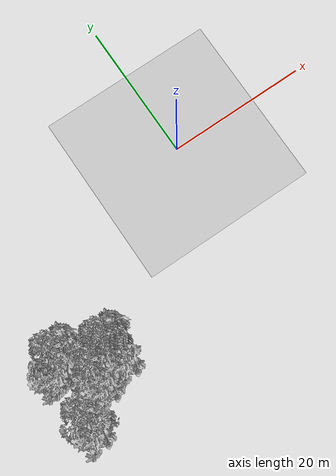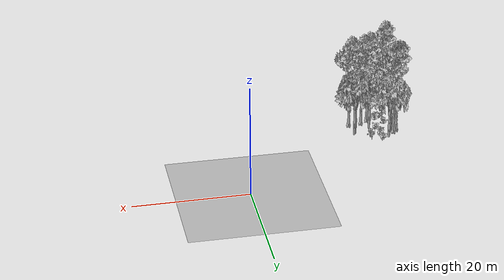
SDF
<sdf version="1.7">
 <world name="default">
  <model name="ground_plane">
   <static>1</static>
   <link name="link">
    <collision name="collision">
     <pose>-50 0 0 0 -0 0</pose>
     <geometry><plane><normal>0 0 1</normal><size>80 80</size></plane></geometry>
     <surface><contact><ode><min_depth>0.01</min_depth><max_vel>0</max_vel></ode></contact></surface>
    </collision>
    <visual name="grass">
     <cast_shadows>0</cast_shadows>
     <geometry>
      <mesh>
       <scale>0.46714285714285714 0.46714285714285714 0.1</scale>
       <uri>file://grass_plane/meshes/grass_plane.dae</uri>
      </mesh>
     </geometry>
    </visual>
   </link>
  </model>
  <model name="Tree 9">
   <static>1</static>
   <pose>-28.70857927524154 -17.509198013527776 0 1.57079 -0 0</pose>
   <link name="link">
    <collision name="collision">
     <geometry><mesh><scale>3.5 5 3.5</scale><uri>model://tree_9/meshes/tree_9.obj</uri></mesh></geometry>
    </collision>
    <visual name="visual">
     <geometry><mesh><scale>3.5 5 3.5</scale><uri>model://tree_9/meshes/tree_9.obj</uri></mesh></geometry>
    </visual>
   </link>
  </model>
  <model name="Tree 38">
   <static>1</static>
   <pose>-22.08386645626849 -16.838610110640275 0 1.57079 -0 0</pose>
   <link name="link">
    <collision name="collision">
     <geometry><mesh><scale>3.5 5 3.5</scale><uri>model://tree_2/meshes/tree_2.obj</uri></mesh></geometry>
    </collision>
    <visual name="visual">
     <geometry><mesh><scale>3.5 5 3.5</scale><uri>model://tree_2/meshes/tree_2.obj</uri></mesh></geometry>
    </visual>
   </link>
  </model>
  <model name="Tree 77">
   <static>1</static>
   <pose>-21.89960686161545 -16.55347990597538 0 1.57079 -0 0</pose>
   <link name="link">
    <collision name="collision">
     <geometry><mesh><scale>3.5 5 3.5</scale><uri>model://tree_2/meshes/tree_2.obj</uri></mesh></geometry>
    </collision>
    <visual name="visual">
     <geometry><mesh><scale>3.5 5 3.5</scale><uri>model://tree_2/meshes/tree_2.obj</uri></mesh></geometry>
    </visual>
   </link>
  </model>
  <model name="Tree 102">
   <static>1</static>
   <pose>-24.003474113866965 -20.798679556213216 0 1.57079 -0 0</pose>
   <link name="link">
    <collision name="collision">
     <geometry><mesh><scale>3.5 5 3.5</scale><uri>model://tree_9/meshes/tree_9.obj</uri></mesh></geometry>
    </collision>
    <visual name="visual">
     <geometry><mesh><scale>3.5 5 3.5</scale><uri>model://tree_9/meshes/tree_9.obj</uri></mesh></geometry>
    </visual>
   </link>
  </model>
  <model name="Tree 124">
   <static>1</static>
   <pose>-28.99152859599208 -16.768815871380376 0 1.57079 -0 0</pose>
   <link name="link">
    <collision name="collision">
     <geometry><mesh><scale>3.5 5 3.5</scale><uri>model://tree_9/meshes/tree_9.obj</uri></mesh></geometry>
    </collision>
    <visual name="visual">
     <geometry><mesh><scale>3.5 5 3.5</scale><uri>model://tree_9/meshes/tree_9.obj</uri></mesh></geometry>
    </visual>
   </link>
  </model>
  <model name="Tree 296">
   <static>1</static>
   <pose>-24.96163909690042 -18.329373755031106 0 1.57079 -0 0</pose>
   <link name="link">
    <collision name="collision">
     <geometry><mesh><scale>3.5 5 3.5</scale><uri>model://tree_2/meshes/tree_2.obj</uri></mesh></geometry>
    </collision>
    <visual name="visual">
     <geometry><mesh><scale>3.5 5 3.5</scale><uri>model://tree_2/meshes/tree_2.obj</uri></mesh></geometry>
    </visual>
   </link>
  </model>
  <model name="Tree 313">
   <static>1</static>
   <pose>-29.627327348847977 -17.398116630171483 0 1.57079 -0 0</pose>
   <link name="link">
    <collision name="collision">
     <geometry><mesh><scale>3.5 5 3.5</scale><uri>model://tree_9/meshes/tree_9.obj</uri></mesh></geometry>
    </collision>
    <visual name="visual">
     <geometry><mesh><scale>3.5 5 3.5</scale><uri>model://tree_9/meshes/tree_9.obj</uri></mesh></geometry>
    </visual>
   </link>
  </model>
  <model name="Tree 321">
   <static>1</static>
   <pose>-25.27277104387409 -21.596573306456044 0 1.57079 -0 0</pose>
   <link name="link">
    <collision name="collision">
     <geometry><mesh><scale>3.5 5 3.5</scale><uri>model://tree_9/meshes/tree_9.obj</uri></mesh></geometry>
    </collision>
    <visual name="visual">
     <geometry><mesh><scale>3.5 5 3.5</scale><uri>model://tree_9/meshes/tree_9.obj</uri></mesh></geometry>
    </visual>
   </link>
  </model>
  <model name="Tree 337">
   <static>1</static>
   <pose>-28.594792998633018 -22.926535132479813 0 1.57079 -0 0</pose>
   <link name="link">
    <collision name="collision">
     <geometry><mesh><scale>3.5 5 3.5</scale><uri>model://tree_2/meshes/tree_2.obj</uri></mesh></geometry>
    </collision>
    <visual name="visual">
     <geometry><mesh><scale>3.5 5 3.5</scale><uri>model://tree_2/meshes/tree_2.obj</uri></mesh></geometry>
    </visual>
   </link>
  </model>
  <model name="Tree 429">
   <static>1</static>
   <pose>-21.71969542380302 -20.51621951171997 0 1.57079 -0 0</pose>
   <link name="link">
    <collision name="collision">
     <geometry><mesh><scale>3.5 5 3.5</scale><uri>model://tree_9/meshes/tree_9.obj</uri></mesh></geometry>
    </collision>
    <visual name="visual">
     <geometry><mesh><scale>3.5 5 3.5</scale><uri>model://tree_9/meshes/tree_9.obj</uri></mesh></geometry>
    </visual>
   </link>
  </model>
  <model name="Tree 459">
   <static>1</static>
   <pose>-28.99389155161218 -25.3976535333312 0 1.57079 -0 0</pose>
   <link name="link">
    <collision name="collision">
     <geometry><mesh><scale>3.5 5 3.5</scale><uri>model://tree_9/meshes/tree_9.obj</uri></mesh></geometry>
    </collision>
    <visual name="visual">
     <geometry><mesh><scale>3.5 5 3.5</scale><uri>model://tree_9/meshes/tree_9.obj</uri></mesh></geometry>
    </visual>
   </link>
  </model>
  <model name="Tree 546">
   <static>1</static>
   <pose>-27.679575762091023 -14.571249263124663 0 1.57079 -0 0</pose>
   <link name="link">
    <collision name="collision">
     <geometry><mesh><scale>3.5 5 3.5</scale><uri>model://tree_2/meshes/tree_2.obj</uri></mesh></geometry>
    </collision>
    <visual name="visual">
     <geometry><mesh><scale>3.5 5 3.5</scale><uri>model://tree_2/meshes/tree_2.obj</uri></mesh></geometry>
    </visual>
   </link>
  </model>
  <model name="Bush 10">
   <static>1</static>
   <pose>-25.724096505784306 -17.335835772125847 0 1.57079 -0 0</pose>
   <link name="link">
    <collision name="collision">
     <geometry><mesh><scale>2 2 2</scale><uri>model://bush_0/meshes/bush_0.obj</uri></mesh></geometry>
     <surface><contact><collide_without_contact>false</collide_without_contact></contact></surface>
    </collision>
    <visual name="visual">
     <geometry><mesh><scale>2 2 2</scale><uri>model://bush_0/meshes/bush_0.obj</uri></mesh></geometry>
    </visual>
   </link>
  </model>
  <model name="Bush 130">
   <static>1</static>
   <pose>-26.696165235688042 -20.962582033814925 0 1.57079 -0 0</pose>
   <link name="link">
    <collision name="collision">
     <geometry><mesh><scale>2 2 2</scale><uri>model://bush_1/meshes/bush_1.obj</uri></mesh></geometry>
     <surface><contact><collide_without_contact>false</collide_without_contact></contact></surface>
    </collision>
    <visual name="visual">
     <geometry><mesh><scale>2 2 2</scale><uri>model://bush_1/meshes/bush_1.obj</uri></mesh></geometry>
    </visual>
   </link>
  </model>
  <model name="Bush 213">
   <static>1</static>
   <pose>-26.18064621405015 -13.461312596232588 0 1.57079 -0 0</pose>
   <link name="link">
    <collision name="collision">
     <geometry><mesh><scale>2 2 2</scale><uri>model://bush_0/meshes/bush_0.obj</uri></mesh></geometry>
     <surface><contact><collide_without_contact>false</collide_without_contact></contact></surface>
    </collision>
    <visual name="visual">
     <geometry><mesh><scale>2 2 2</scale><uri>model://bush_0/meshes/bush_0.obj</uri></mesh></geometry>
    </visual>
   </link>
  </model>
  <model name="Bush 281">
   <static>1</static>
   <pose>-27.84034647629592 -19.375460166031885 0 1.57079 -0 0</pose>
   <link name="link">
    <collision name="collision">
     <geometry><mesh><scale>2 2 2</scale><uri>model://bush_4/meshes/bush_4.obj</uri></mesh></geometry>
     <surface><contact><collide_without_contact>false</collide_without_contact></contact></surface>
    </collision>
    <visual name="visual">
     <geometry><mesh><scale>2 2 2</scale><uri>model://bush_4/meshes/bush_4.obj</uri></mesh></geometry>
    </visual>
   </link>
  </model>
  <model name="Bush 288">
   <static>1</static>
   <pose>-24.37346690805176 -14.089783718409493 0 1.57079 -0 0</pose>
   <link name="link">
    <collision name="collision">
     <geometry><mesh><scale>2 2 2</scale><uri>model://bush_5/meshes/bush_5.obj</uri></mesh></geometry>
     <surface><contact><collide_without_contact>false</collide_without_contact></contact></surface>
    </collision>
    <visual name="visual">
     <geometry><mesh><scale>2 2 2</scale><uri>model://bush_5/meshes/bush_5.obj</uri></mesh></geometry>
    </visual>
   </link>
  </model>
  <model name="Bush 300">
   <static>1</static>
   <pose>-28.070612834379062 -22.607983112358472 0 1.57079 -0 0</pose>
   <link name="link">
    <collision name="collision">
     <geometry><mesh><scale>2 2 2</scale><uri>model://bush_2/meshes/bush_2.obj</uri></mesh></geometry>
     <surface><contact><collide_without_contact>false</collide_without_contact></contact></surface>
    </collision>
    <visual name="visual">
     <geometry><mesh><scale>2 2 2</scale><uri>model://bush_2/meshes/bush_2.obj</uri></mesh></geometry>
    </visual>
   </link>
  </model>
  <model name="Bush 310">
   <static>1</static>
   <pose>-26.88338850436366 -25.57632437847812 0 1.57079 -0 0</pose>
   <link name="link">
    <collision name="collision">
     <geometry><mesh><scale>2 2 2</scale><uri>model://bush_4/meshes/bush_4.obj</uri></mesh></geometry>
     <surface><contact><collide_without_contact>false</collide_without_contact></contact></surface>
    </collision>
    <visual name="visual">
     <geometry><mesh><scale>2 2 2</scale><uri>model://bush_4/meshes/bush_4.obj</uri></mesh></geometry>
    </visual>
   </link>
  </model>
  <model name="Bush 320">
   <static>1</static>
   <pose>-26.02668351501191 -15.080449714445095 0 1.57079 -0 0</pose>
   <link name="link">
    <collision name="collision">
     <geometry><mesh><scale>2 2 2</scale><uri>model://bush_0/meshes/bush_0.obj</uri></mesh></geometry>
     <surface><contact><collide_without_contact>false</collide_without_contact></contact></surface>
    </collision>
    <visual name="visual">
     <geometry><mesh><scale>2 2 2</scale><uri>model://bush_0/meshes/bush_0.obj</uri></mesh></geometry>
    </visual>
   </link>
  </model>
  <model name="Bush 451">
   <static>1</static>
   <pose>-24.594090248531565 -15.68223358898529 0 1.57079 -0 0</pose>
   <link name="link">
    <collision name="collision">
     <geometry><mesh><scale>2 2 2</scale><uri>model://bush_4/meshes/bush_4.obj</uri></mesh></geometry>
     <surface><contact><collide_without_contact>false</collide_without_contact></contact></surface>
    </collision>
    <visual name="visual">
     <geometry><mesh><scale>2 2 2</scale><uri>model://bush_4/meshes/bush_4.obj</uri></mesh></geometry>
    </visual>
   </link>
  </model>
  <model name="Bush 523">
   <static>1</static>
   <pose>-26.93570916337366 -17.592370362233716 0 1.57079 -0 0</pose>
   <link name="link">
    <collision name="collision">
     <geometry><mesh><scale>2 2 2</scale><uri>model://bush_2/meshes/bush_2.obj</uri></mesh></geometry>
     <surface><contact><collide_without_contact>false</collide_without_contact></contact></surface>
    </collision>
    <visual name="visual">
     <geometry><mesh><scale>2 2 2</scale><uri>model://bush_2/meshes/bush_2.obj</uri></mesh></geometry>
    </visual>
   </link>
  </model>
  <model name="Bush 619">
   <static>1</static>
   <pose>-29.90493571274296 -20.306101739982083 0 1.57079 -0 0</pose>
   <link name="link">
    <collision name="collision">
     <geometry><mesh><scale>2 2 2</scale><uri>model://bush_0/meshes/bush_0.obj</uri></mesh></geometry>
     <surface><contact><collide_without_contact>false</collide_without_contact></contact></surface>
    </collision>
    <visual name="visual">
     <geometry><mesh><scale>2 2 2</scale><uri>model://bush_0/meshes/bush_0.obj</uri></mesh></geometry>
    </visual>
   </link>
  </model>
 </world>
</sdf>
